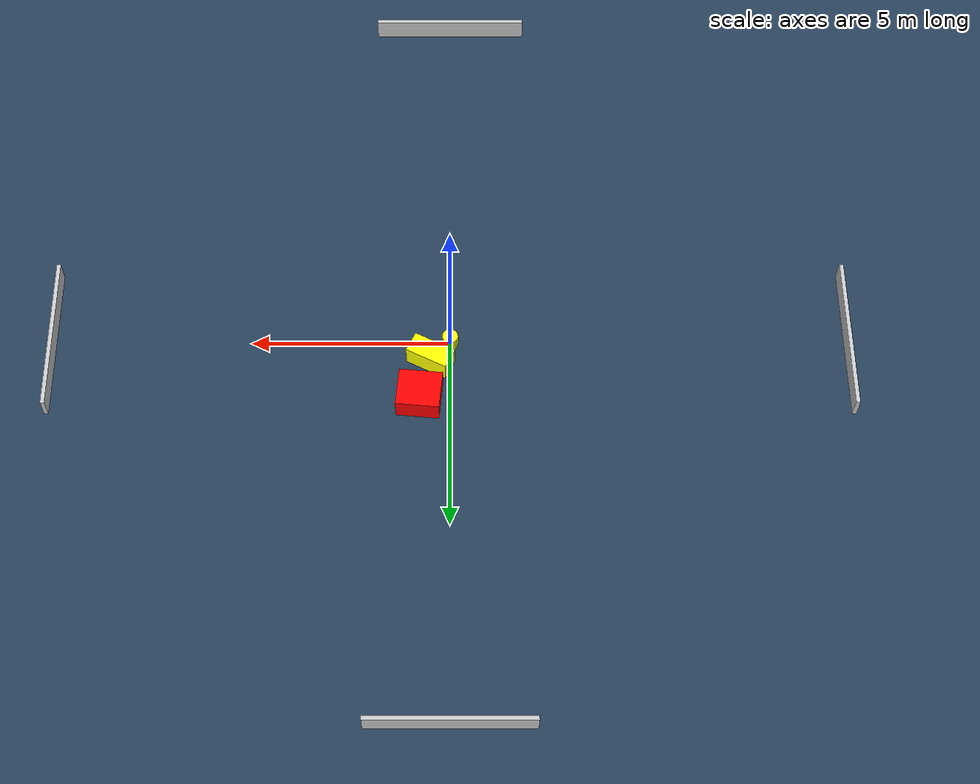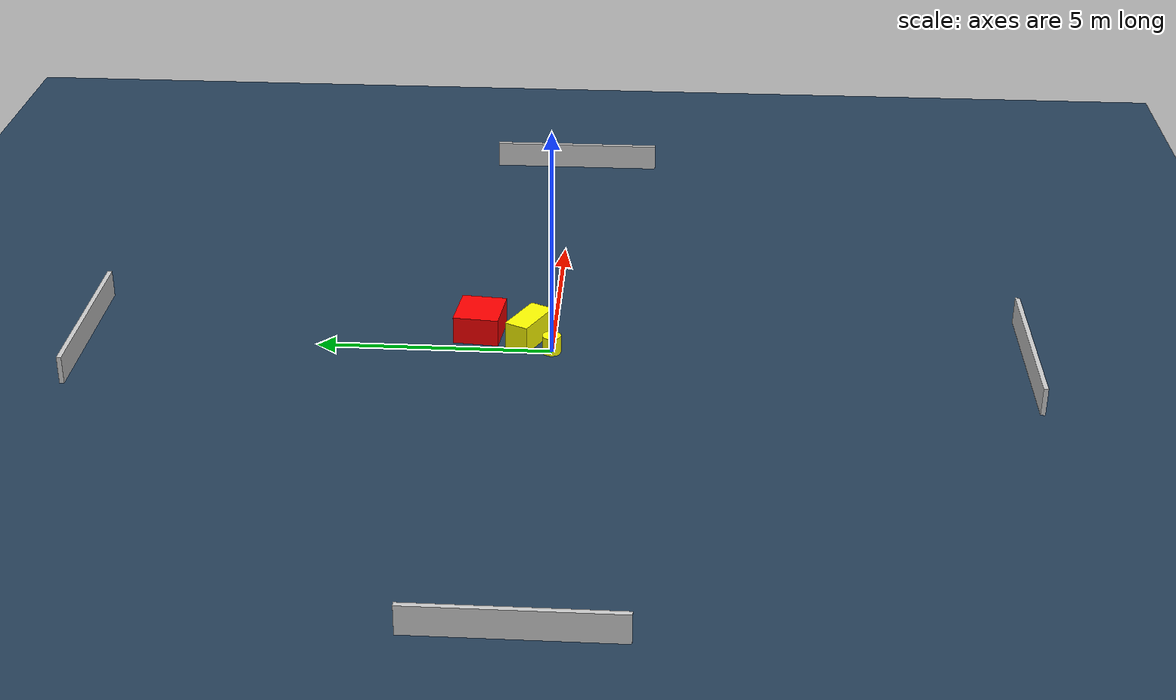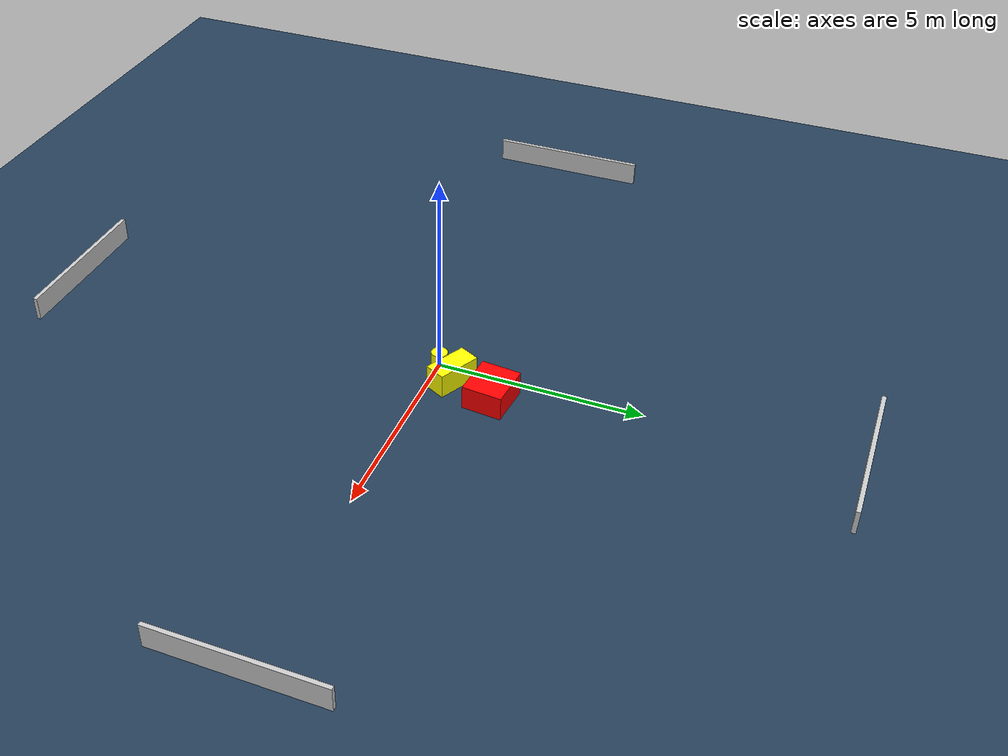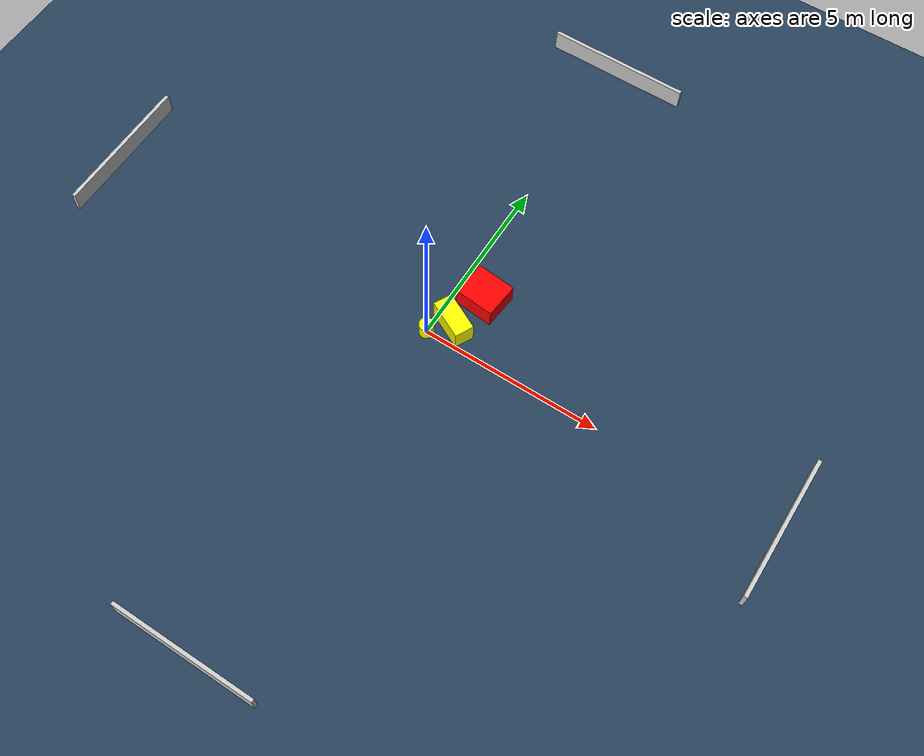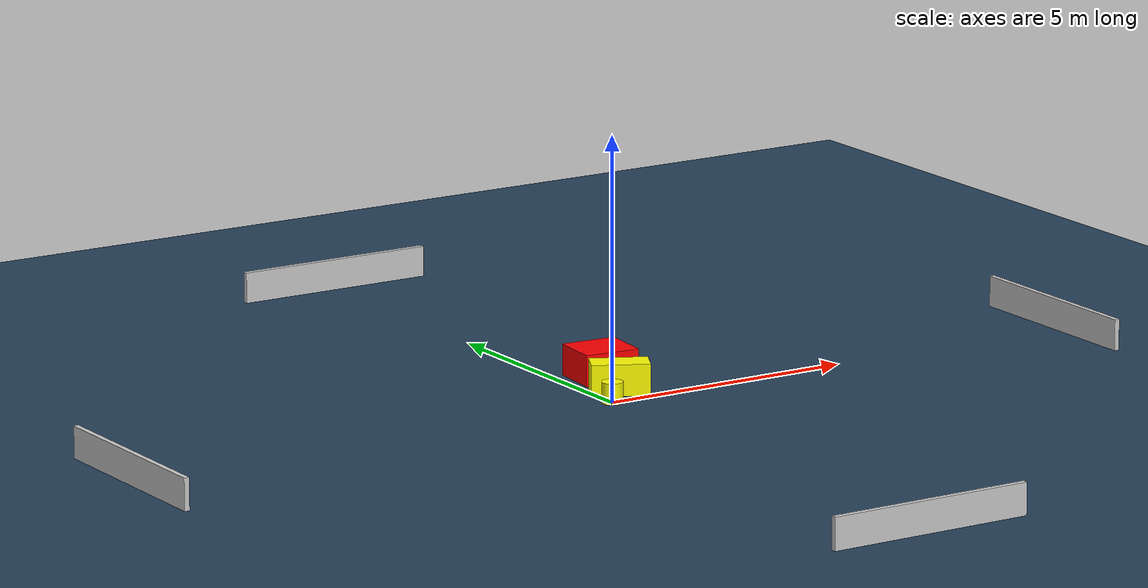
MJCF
<?xml version="1.0" ?>
<mujoco model="generated_environment">
  <option timestep="0.01" integrator="RK4" cone="elliptic"/>
  <default>
    <geom density="1"/>
  </default>
  <asset>
    <texture builtin="gradient" height="3072" name="skybox" rgb1="0.3 0.5 0.7" rgb2="0 0 0" type="skybox" width="512"/>
    <texture builtin="checker" height="300" name="groundplane" rgb1="0.2 0.3 0.4" rgb2="0.1 0.2 0.3" type="2d" width="300"/>
    <material name="groundplane" reflectance="0.2" texrepeat="5 5" texture="groundplane"/>
  </asset>
  <worldbody>
    <light dir="0 0 -1" directional="true" pos="0 0 1.5"/>
    <geom condim="3" friction="0.5 0.005 0.001" material="groundplane" name="floor" pos="0 0 0" size="0 0 0.05" type="plane"/>
    <body name="walls">
      <geom name="wall_1" condim="4" pos="-10.0 0.0 0.3" rgba="0.800000011920929 0.800000011920929 0.800000011920929 1.0" size="0.05 2.0 0.3" type="box"/>
      <geom name="wall_2" condim="4" pos="10.0 0.0 0.3" rgba="0.800000011920929 0.800000011920929 0.800000011920929 1.0" size="0.05 2.0 0.3" type="box"/>
      <geom name="wall_3" condim="4" pos="0.0 -10.0 0.3" rgba="0.800000011920929 0.800000011920929 0.800000011920929 1.0" size="2.0 0.05 0.3" type="box"/>
      <geom name="wall_4" condim="4" pos="0.0 10.0 0.3" rgba="0.800000011920929 0.800000011920929 0.800000011920929 1.0" size="2.0 0.05 0.3" type="box"/>
    </body>
    <body name="robot">
      <joint name="joint_x" type="slide" pos="0 0 0" axis="1 0 0"/>
      <joint name="joint_y" type="slide" pos="0 0 0" axis="0 1 0"/>
      <geom name="robot" type="cylinder" pos="0.0 0.0 0.2" size="0.2 0.2 0.0" mass="5.0" friction="1.0 0.005 0.0001" condim="4" rgba="1.0 1.0 0.0 1.0"/>
    </body>
    <body name="obstacle_1_movable">
      <geom name="obstacle_1_movable" condim="4" pos="0.48970473603976444 0.5103822497301364 0.3" euler="0 0 63.162844366826334" friction="0.0 0.005 0.001" rgba="1.0 1.0 0.0 1.0" size="0.2659336281501321 0.5488314989814831 0.3" type="box" mass="0.1"/>
      <joint type="free"/>
    </body>
    <body name="obstacle_2_static">
      <geom name="obstacle_2_static" condim="4" pos="0.7674599752029279 1.5911763327578534 0.3" euler="0 0 264.58665048396864" friction="0.0 0.005 0.001" rgba="1.0 0.0 0.0 1.0" size="0.48617171998549835 0.5409365076531689 0.3" type="box"/>
    </body>
  </worldbody>
  <actuator>
    <motor name="actuator_x" joint="joint_x" gear="1" ctrlrange="-1 1"/>
    <motor name="actuator_y" joint="joint_y" gear="1" ctrlrange="-1 1"/>
  </actuator>
</mujoco>
